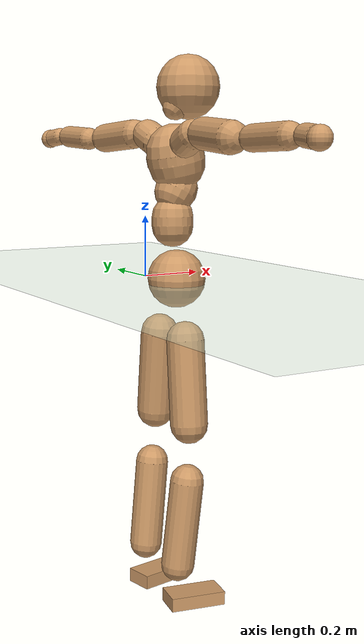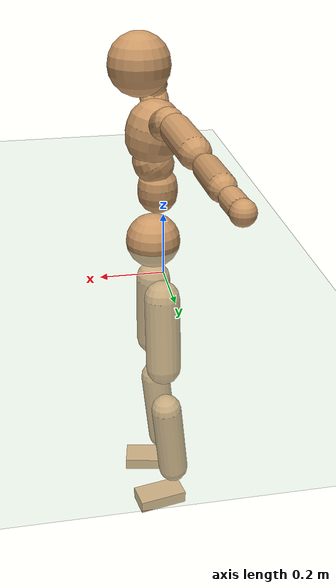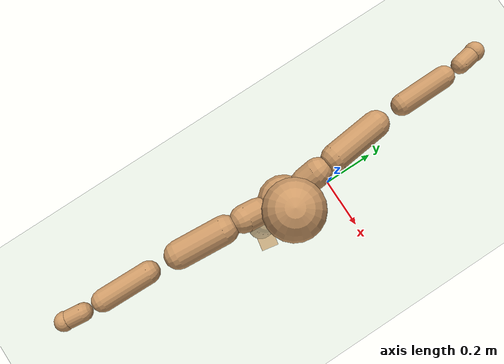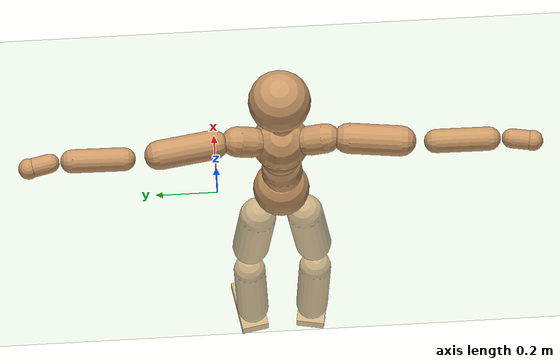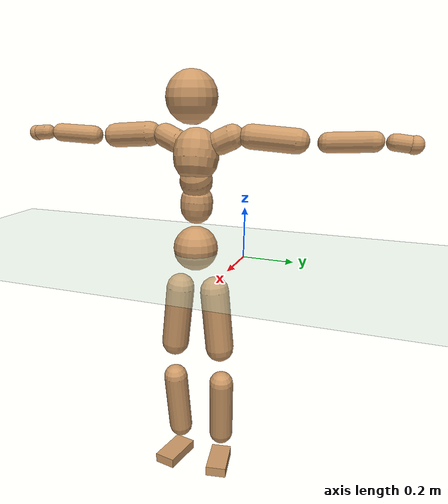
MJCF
<mujoco model="humanoid">
  <compiler coordinate="local" angle="radian"/>
  <default>
    <joint damping="0.0" armature="0.01" stiffness="0.0" limited="true"/>
    <geom conaffinity="1" condim="3" contype="7" margin="0.001" rgba="0.8 0.6 .4 1"/>
  </default>
  <asset>
    <texture type="skybox" builtin="gradient" rgb1=".4 .5 .6" rgb2="0 0 0" width="100" height="100"/>
    <texture builtin="flat" height="1278" mark="cross" markrgb="1 1 1" name="texgeom" random="0.01" rgb1="0.8 0.6 0.4" rgb2="0.8 0.6 0.4" type="cube" width="127"/>
    <texture builtin="checker" height="100" name="texplane" rgb1="0 0 0" rgb2="0.8 0.8 0.8" type="2d" width="100"/>
    <material name="MatPlane" reflectance="0.5" shininess="1" specular="1" texrepeat="60 60" texture="texplane"/>
    <material name="geom" texture="texgeom" texuniform="true"/>
  </asset>
  <worldbody>
    <light cutoff="100" diffuse="1 1 1" dir="-0 0 -1.3" directional="true" exponent="1" pos="0 0 1.3" specular=".1 .1 .1"/>
    <geom conaffinity="1" condim="3" name="floor" pos="0 0 0" rgba="0.8 0.9 0.8 1" size="100 100 .2" type="plane" material="MatPlane"/>
    <body name="Pelvis" pos="-0.0024 -0.2089 0.0153">
      <freejoint name="Pelvis"/>
      <geom type="sphere" contype="1" conaffinity="1" density="500" size="0.0921" pos="0.0000 0.0000 0.0000" name="Pelvis"/>
      <body name="L_Hip" pos="-0.0168 0.0695 -0.0967">
        <joint name="L_Hip_x" type="hinge" pos="0 0 0" axis="1 0 0" stiffness="800" damping="80" armature="0.02" range="-180.0000 180.0000"/>
        <joint name="L_Hip_y" type="hinge" pos="0 0 0" axis="0 1 0" stiffness="800" damping="80" armature="0.02" range="-180.0000 180.0000"/>
        <joint name="L_Hip_z" type="hinge" pos="0 0 0" axis="0 0 1" stiffness="800" damping="80" armature="0.02" range="-180.0000 180.0000"/>
        <geom type="capsule" contype="1" conaffinity="1" density="500" fromto="-0.0002 0.0086 -0.0879 -0.0009 0.0344 -0.3514" size="0.061" name="L_Hip"/>
        <body name="L_Knee" pos="-0.0011 0.0431 -0.4393">
          <joint name="L_Knee_x" type="hinge" pos="0 0 0" axis="1 0 0" stiffness="800" damping="80" armature="0.02" range="-180.0000 180.0000"/>
          <joint name="L_Knee_y" type="hinge" pos="0 0 0" axis="0 1 0" stiffness="800" damping="80" armature="0.02" range="-180.0000 180.0000"/>
          <joint name="L_Knee_z" type="hinge" pos="0 0 0" axis="0 0 1" stiffness="800" damping="80" armature="0.02" range="-180.0000 180.0000"/>
          <geom type="capsule" contype="1" conaffinity="1" density="500" fromto="-0.0096 -0.0027 -0.0933 -0.0385 -0.0109 -0.3734" size="0.0538" name="L_Knee"/>
          <body name="L_Ankle" pos="-0.0481 -0.0136 -0.4667">
            <joint name="L_Ankle_x" type="hinge" pos="0 0 0" axis="1 0 0" stiffness="800" damping="80" armature="0.02" range="-180.0000 180.0000"/>
            <joint name="L_Ankle_y" type="hinge" pos="0 0 0" axis="0 1 0" stiffness="800" damping="80" armature="0.02" range="-180.0000 180.0000"/>
            <joint name="L_Ankle_z" type="hinge" pos="0 0 0" axis="0 0 1" stiffness="800" damping="80" armature="0.02" range="-180.0000 180.0000"/>
            <geom type="box" contype="1" conaffinity="1" density="500" pos="0.0630 0.0114 -0.0319" size="0.088 0.0457 0.0229" quat="0.9960 0.0000 0.0000 0.0894" name="L_Ankle"/>
            <body name="L_Toe" pos="0.1261 0.0228 -0.0639">
              <joint name="L_Toe_x" type="hinge" pos="0 0 0" axis="1 0 0" stiffness="500" damping="50" armature="0.02" range="-180.0000 180.0000"/>
              <joint name="L_Toe_y" type="hinge" pos="0 0 0" axis="0 1 0" stiffness="500" damping="50" armature="0.02" range="-180.0000 180.0000"/>
              <joint name="L_Toe_z" type="hinge" pos="0 0 0" axis="0 0 1" stiffness="500" damping="50" armature="0.02" range="-180.0000 180.0000"/>
              <geom type="box" contype="1" conaffinity="1" density="500" pos="0.0000 0.0000 0.0311" size="0.0009 0.0023 0.0011" quat="0.9954 0.0000 0.0000 0.0956" name="L_Toe"/>
            </body>
          </body>
        </body>
      </body>
      <body name="R_Hip" pos="-0.0115 -0.0667 -0.0957">
        <joint name="R_Hip_x" type="hinge" pos="0 0 0" axis="1 0 0" stiffness="800" damping="80" armature="0.02" range="-180.0000 180.0000"/>
        <joint name="R_Hip_y" type="hinge" pos="0 0 0" axis="0 1 0" stiffness="800" damping="80" armature="0.02" range="-180.0000 180.0000"/>
        <joint name="R_Hip_z" type="hinge" pos="0 0 0" axis="0 0 1" stiffness="800" damping="80" armature="0.02" range="-180.0000 180.0000"/>
        <geom type="capsule" contype="1" conaffinity="1" density="500" fromto="-0.0010 -0.0101 -0.0893 -0.0040 -0.0403 -0.3570" size="0.0599" name="R_Hip"/>
        <body name="R_Knee" pos="-0.005 -0.0504 -0.4463">
          <joint name="R_Knee_x" type="hinge" pos="0 0 0" axis="1 0 0" stiffness="800" damping="80" armature="0.02" range="-180.0000 180.0000"/>
          <joint name="R_Knee_y" type="hinge" pos="0 0 0" axis="0 1 0" stiffness="800" damping="80" armature="0.02" range="-180.0000 180.0000"/>
          <joint name="R_Knee_z" type="hinge" pos="0 0 0" axis="0 0 1" stiffness="800" damping="80" armature="0.02" range="-180.0000 180.0000"/>
          <geom type="capsule" contype="1" conaffinity="1" density="500" fromto="-0.0089 0.0035 -0.0930 -0.0358 0.0139 -0.3720" size="0.054" name="R_Knee"/>
          <body name="R_Ankle" pos="-0.0447 0.0174 -0.465">
            <joint name="R_Ankle_x" type="hinge" pos="0 0 0" axis="1 0 0" stiffness="800" damping="80" armature="0.02" range="-180.0000 180.0000"/>
            <joint name="R_Ankle_y" type="hinge" pos="0 0 0" axis="0 1 0" stiffness="800" damping="80" armature="0.02" range="-180.0000 180.0000"/>
            <joint name="R_Ankle_z" type="hinge" pos="0 0 0" axis="0 0 1" stiffness="800" damping="80" armature="0.02" range="-180.0000 180.0000"/>
            <geom type="box" contype="1" conaffinity="1" density="500" pos="0.0648 -0.0119 -0.0273" size="0.0905 0.0478 0.0221" quat="0.9958 0.0000 0.0000 -0.0910" name="R_Ankle"/>
            <body name="R_Toe" pos="0.1296 -0.0239 -0.0546">
              <joint name="R_Toe_x" type="hinge" pos="0 0 0" axis="1 0 0" stiffness="500" damping="50" armature="0.02" range="-180.0000 180.0000"/>
              <joint name="R_Toe_y" type="hinge" pos="0 0 0" axis="0 1 0" stiffness="500" damping="50" armature="0.02" range="-180.0000 180.0000"/>
              <joint name="R_Toe_z" type="hinge" pos="0 0 0" axis="0 0 1" stiffness="500" damping="50" armature="0.02" range="-180.0000 180.0000"/>
              <geom type="box" contype="1" conaffinity="1" density="500" pos="0.0000 0.0000 0.0301" size="0.0008 0.0023 0.0012" quat="0.9966 0.0000 0.0000 -0.0823" name="R_Toe"/>
            </body>
          </body>
        </body>
      </body>
      <body name="Torso" pos="-0.0161 -0.0035 0.1109">
        <joint name="Torso_x" type="hinge" pos="0 0 0" axis="1 0 0" stiffness="1000" damping="100" armature="0.02" range="-180.0000 180.0000"/>
        <joint name="Torso_y" type="hinge" pos="0 0 0" axis="0 1 0" stiffness="1000" damping="100" armature="0.02" range="-180.0000 180.0000"/>
        <joint name="Torso_z" type="hinge" pos="0 0 0" axis="0 0 1" stiffness="1000" damping="100" armature="0.02" range="-180.0000 180.0000"/>
        <geom type="capsule" contype="1" conaffinity="1" density="500" fromto="0.0005 0.0030 0.0850 0.0003 0.0020 0.0567" size="0.0658" name="Torso"/>
        <body name="Spine" pos="0.0008 0.0051 0.1417">
          <joint name="Spine_x" type="hinge" pos="0 0 0" axis="1 0 0" stiffness="1000" damping="100" armature="0.02" range="-180.0000 180.0000"/>
          <joint name="Spine_y" type="hinge" pos="0 0 0" axis="0 1 0" stiffness="1000" damping="100" armature="0.02" range="-180.0000 180.0000"/>
          <joint name="Spine_z" type="hinge" pos="0 0 0" axis="0 0 1" stiffness="1000" damping="100" armature="0.02" range="-180.0000 180.0000"/>
          <geom type="capsule" contype="1" conaffinity="1" density="500" fromto="0.0171 0.0012 0.0311 0.0114 0.0008 0.0208" size="0.066" name="Spine"/>
          <body name="Chest" pos="0.0285 0.0019 0.0519">
            <joint name="Chest_x" type="hinge" pos="0 0 0" axis="1 0 0" stiffness="1000" damping="100" armature="0.02" range="-180.0000 180.0000"/>
            <joint name="Chest_y" type="hinge" pos="0 0 0" axis="0 1 0" stiffness="1000" damping="100" armature="0.02" range="-180.0000 180.0000"/>
            <joint name="Chest_z" type="hinge" pos="0 0 0" axis="0 0 1" stiffness="1000" damping="100" armature="0.02" range="-180.0000 180.0000"/>
            <geom type="capsule" contype="1" conaffinity="1" density="500" fromto="-0.0200 -0.0013 0.0883 -0.0133 -0.0009 0.0589" size="0.0906" name="Chest"/>
            <body name="Neck" pos="-0.0315 -0.005 0.2126">
              <joint name="Neck_x" type="hinge" pos="0 0 0" axis="1 0 0" stiffness="500" damping="50" armature="0.02" range="-180.0000 180.0000"/>
              <joint name="Neck_y" type="hinge" pos="0 0 0" axis="0 1 0" stiffness="500" damping="50" armature="0.02" range="-180.0000 180.0000"/>
              <joint name="Neck_z" type="hinge" pos="0 0 0" axis="0 0 1" stiffness="500" damping="50" armature="0.02" range="-180.0000 180.0000"/>
              <geom type="capsule" contype="1" conaffinity="1" density="500" fromto="0.0119 0.0010 0.0151 0.0475 0.0040 0.0605" size="0.0408" name="Neck"/>
              <body name="Head" pos="0.0594 0.0049 0.0756">
                <joint name="Head_x" type="hinge" pos="0 0 0" axis="1 0 0" stiffness="500" damping="50" armature="0.02" range="-180.0000 180.0000"/>
                <joint name="Head_y" type="hinge" pos="0 0 0" axis="0 1 0" stiffness="500" damping="50" armature="0.02" range="-180.0000 180.0000"/>
                <joint name="Head_z" type="hinge" pos="0 0 0" axis="0 0 1" stiffness="500" damping="50" armature="0.02" range="-180.0000 180.0000"/>
                <geom type="sphere" contype="1" conaffinity="1" density="500" size="0.0991" pos="0.0000 0.0000 0.0000" name="Head"/>
              </body>
            </body>
            <body name="L_Thorax" pos="-0.0323 0.0736 0.1152">
              <joint name="L_Thorax_x" type="hinge" pos="0 0 0" axis="1 0 0" stiffness="500" damping="50" armature="0.02" range="-180.0000 180.0000"/>
              <joint name="L_Thorax_y" type="hinge" pos="0 0 0" axis="0 1 0" stiffness="500" damping="50" armature="0.02" range="-180.0000 180.0000"/>
              <joint name="L_Thorax_z" type="hinge" pos="0 0 0" axis="0 0 1" stiffness="500" damping="50" armature="0.02" range="-180.0000 180.0000"/>
              <geom type="capsule" contype="1" conaffinity="1" density="500" fromto="-0.0014 0.0162 0.0071 -0.0054 0.0648 0.0284" size="0.0487" name="L_Thorax"/>
              <body name="L_Shoulder" pos="-0.0068 0.081 0.0355">
                <joint name="L_Shoulder_x" type="hinge" pos="0 0 0" axis="1 0 0" stiffness="500" damping="50" armature="0.02" range="-720.0000 720.0000"/>
                <joint name="L_Shoulder_y" type="hinge" pos="0 0 0" axis="0 1 0" stiffness="500" damping="50" armature="0.02" range="-720.0000 720.0000"/>
                <joint name="L_Shoulder_z" type="hinge" pos="0 0 0" axis="0 0 1" stiffness="500" damping="50" armature="0.02" range="-720.0000 720.0000"/>
                <geom type="capsule" contype="1" conaffinity="1" density="500" fromto="-0.0064 0.0575 -0.0044 -0.0256 0.2301 -0.0177" size="0.0471" name="L_Shoulder"/>
                <body name="L_Elbow" pos="-0.032 0.2876 -0.0221">
                  <joint name="L_Elbow_x" type="hinge" pos="0 0 0" axis="1 0 0" stiffness="500" damping="50" armature="0.02" range="-720.0000 720.0000"/>
                  <joint name="L_Elbow_y" type="hinge" pos="0 0 0" axis="0 1 0" stiffness="500" damping="50" armature="0.02" range="-720.0000 720.0000"/>
                  <joint name="L_Elbow_z" type="hinge" pos="0 0 0" axis="0 0 1" stiffness="500" damping="50" armature="0.02" range="-720.0000 720.0000"/>
                  <geom type="capsule" contype="1" conaffinity="1" density="500" fromto="-0.0003 0.0541 0.0026 -0.0014 0.2166 0.0102" size="0.0375" name="L_Elbow"/>
                  <body name="L_Wrist" pos="-0.0017 0.2707 0.0128">
                    <joint name="L_Wrist_x" type="hinge" pos="0 0 0" axis="1 0 0" stiffness="300" damping="30" armature="0.02" range="-180.0000 180.0000"/>
                    <joint name="L_Wrist_y" type="hinge" pos="0 0 0" axis="0 1 0" stiffness="300" damping="30" armature="0.02" range="-180.0000 180.0000"/>
                    <joint name="L_Wrist_z" type="hinge" pos="0 0 0" axis="0 0 1" stiffness="300" damping="30" armature="0.02" range="-180.0000 180.0000"/>
                    <geom type="capsule" contype="1" conaffinity="1" density="500" fromto="-0.0028 0.0166 -0.0021 -0.0114 0.0665 -0.0084" size="0.0307" name="L_Wrist"/>
                    <body name="L_Hand" pos="-0.0142 0.0831 -0.0105">
                      <joint name="L_Hand_x" type="hinge" pos="0 0 0" axis="1 0 0" stiffness="300" damping="30" armature="0.02" range="-180.0000 180.0000"/>
                      <joint name="L_Hand_y" type="hinge" pos="0 0 0" axis="0 1 0" stiffness="300" damping="30" armature="0.02" range="-180.0000 180.0000"/>
                      <joint name="L_Hand_z" type="hinge" pos="0 0 0" axis="0 0 1" stiffness="300" damping="30" armature="0.02" range="-180.0000 180.0000"/>
                      <geom type="sphere" contype="1" conaffinity="1" density="500" size="0.0333" pos="0.0000 0.0000 0.0000" name="L_Hand"/>
                    </body>
                  </body>
                </body>
              </body>
            </body>
            <body name="R_Thorax" pos="-0.0362 -0.0752 0.1137">
              <joint name="R_Thorax_x" type="hinge" pos="0 0 0" axis="1 0 0" stiffness="500" damping="50" armature="0.02" range="-180.0000 180.0000"/>
              <joint name="R_Thorax_y" type="hinge" pos="0 0 0" axis="0 1 0" stiffness="500" damping="50" armature="0.02" range="-180.0000 180.0000"/>
              <joint name="R_Thorax_z" type="hinge" pos="0 0 0" axis="0 0 1" stiffness="500" damping="50" armature="0.02" range="-180.0000 180.0000"/>
              <geom type="capsule" contype="1" conaffinity="1" density="500" fromto="-0.0013 -0.0167 0.0072 -0.0052 -0.0669 0.0288" size="0.0472" name="R_Thorax"/>
              <body name="R_Shoulder" pos="-0.0065 -0.0837 0.036">
                <joint name="R_Shoulder_x" type="hinge" pos="0 0 0" axis="1 0 0" stiffness="500" damping="50" armature="0.02" range="-720.0000 720.0000"/>
                <joint name="R_Shoulder_y" type="hinge" pos="0 0 0" axis="0 1 0" stiffness="500" damping="50" armature="0.02" range="-720.0000 720.0000"/>
                <joint name="R_Shoulder_z" type="hinge" pos="0 0 0" axis="0 0 1" stiffness="500" damping="50" armature="0.02" range="-720.0000 720.0000"/>
                <geom type="capsule" contype="1" conaffinity="1" density="500" fromto="-0.0046 -0.0549 -0.0038 -0.0186 -0.2196 -0.0152" size="0.0487" name="R_Shoulder"/>
                <body name="R_Elbow" pos="-0.0232 -0.2745 -0.019">
                  <joint name="R_Elbow_x" type="hinge" pos="0 0 0" axis="1 0 0" stiffness="500" damping="50" armature="0.02" range="-720.0000 720.0000"/>
                  <joint name="R_Elbow_y" type="hinge" pos="0 0 0" axis="0 1 0" stiffness="500" damping="50" armature="0.02" range="-720.0000 720.0000"/>
                  <joint name="R_Elbow_z" type="hinge" pos="0 0 0" axis="0 0 1" stiffness="500" damping="50" armature="0.02" range="-720.0000 720.0000"/>
                  <geom type="capsule" contype="1" conaffinity="1" density="500" fromto="-0.0013 -0.0555 0.0020 -0.0052 -0.2219 0.0078" size="0.0379" name="R_Elbow"/>
                  <body name="R_Wrist" pos="-0.0065 -0.2773 0.0098">
                    <joint name="R_Wrist_x" type="hinge" pos="0 0 0" axis="1 0 0" stiffness="300" damping="30" armature="0.02" range="-180.0000 180.0000"/>
                    <joint name="R_Wrist_y" type="hinge" pos="0 0 0" axis="0 1 0" stiffness="300" damping="30" armature="0.02" range="-180.0000 180.0000"/>
                    <joint name="R_Wrist_z" type="hinge" pos="0 0 0" axis="0 0 1" stiffness="300" damping="30" armature="0.02" range="-180.0000 180.0000"/>
                    <geom type="capsule" contype="1" conaffinity="1" density="500" fromto="-0.0021 -0.0165 -0.0015 -0.0085 -0.0661 -0.0060" size="0.0311" name="R_Wrist"/>
                    <body name="R_Hand" pos="-0.0107 -0.0826 -0.0075">
                      <joint name="R_Hand_x" type="hinge" pos="0 0 0" axis="1 0 0" stiffness="300" damping="30" armature="0.02" range="-180.0000 180.0000"/>
                      <joint name="R_Hand_y" type="hinge" pos="0 0 0" axis="0 1 0" stiffness="300" damping="30" armature="0.02" range="-180.0000 180.0000"/>
                      <joint name="R_Hand_z" type="hinge" pos="0 0 0" axis="0 0 1" stiffness="300" damping="30" armature="0.02" range="-180.0000 180.0000"/>
                      <geom type="sphere" contype="1" conaffinity="1" density="500" size="0.0330" pos="0.0000 0.0000 0.0000" name="R_Hand"/>
                    </body>
                  </body>
                </body>
              </body>
            </body>
          </body>
        </body>
      </body>
    </body>
  </worldbody>
  <actuator>
    <motor name="L_Hip_x" joint="L_Hip_x" gear="500"/>
    <motor name="L_Hip_y" joint="L_Hip_y" gear="500"/>
    <motor name="L_Hip_z" joint="L_Hip_z" gear="500"/>
    <motor name="L_Knee_x" joint="L_Knee_x" gear="500"/>
    <motor name="L_Knee_y" joint="L_Knee_y" gear="500"/>
    <motor name="L_Knee_z" joint="L_Knee_z" gear="500"/>
    <motor name="L_Ankle_x" joint="L_Ankle_x" gear="500"/>
    <motor name="L_Ankle_y" joint="L_Ankle_y" gear="500"/>
    <motor name="L_Ankle_z" joint="L_Ankle_z" gear="500"/>
    <motor name="L_Toe_x" joint="L_Toe_x" gear="500"/>
    <motor name="L_Toe_y" joint="L_Toe_y" gear="500"/>
    <motor name="L_Toe_z" joint="L_Toe_z" gear="500"/>
    <motor name="R_Hip_x" joint="R_Hip_x" gear="500"/>
    <motor name="R_Hip_y" joint="R_Hip_y" gear="500"/>
    <motor name="R_Hip_z" joint="R_Hip_z" gear="500"/>
    <motor name="R_Knee_x" joint="R_Knee_x" gear="500"/>
    <motor name="R_Knee_y" joint="R_Knee_y" gear="500"/>
    <motor name="R_Knee_z" joint="R_Knee_z" gear="500"/>
    <motor name="R_Ankle_x" joint="R_Ankle_x" gear="500"/>
    <motor name="R_Ankle_y" joint="R_Ankle_y" gear="500"/>
    <motor name="R_Ankle_z" joint="R_Ankle_z" gear="500"/>
    <motor name="R_Toe_x" joint="R_Toe_x" gear="500"/>
    <motor name="R_Toe_y" joint="R_Toe_y" gear="500"/>
    <motor name="R_Toe_z" joint="R_Toe_z" gear="500"/>
    <motor name="Torso_x" joint="Torso_x" gear="500"/>
    <motor name="Torso_y" joint="Torso_y" gear="500"/>
    <motor name="Torso_z" joint="Torso_z" gear="500"/>
    <motor name="Spine_x" joint="Spine_x" gear="500"/>
    <motor name="Spine_y" joint="Spine_y" gear="500"/>
    <motor name="Spine_z" joint="Spine_z" gear="500"/>
    <motor name="Chest_x" joint="Chest_x" gear="500"/>
    <motor name="Chest_y" joint="Chest_y" gear="500"/>
    <motor name="Chest_z" joint="Chest_z" gear="500"/>
    <motor name="Neck_x" joint="Neck_x" gear="500"/>
    <motor name="Neck_y" joint="Neck_y" gear="500"/>
    <motor name="Neck_z" joint="Neck_z" gear="500"/>
    <motor name="Head_x" joint="Head_x" gear="500"/>
    <motor name="Head_y" joint="Head_y" gear="500"/>
    <motor name="Head_z" joint="Head_z" gear="500"/>
    <motor name="L_Thorax_x" joint="L_Thorax_x" gear="500"/>
    <motor name="L_Thorax_y" joint="L_Thorax_y" gear="500"/>
    <motor name="L_Thorax_z" joint="L_Thorax_z" gear="500"/>
    <motor name="L_Shoulder_x" joint="L_Shoulder_x" gear="500"/>
    <motor name="L_Shoulder_y" joint="L_Shoulder_y" gear="500"/>
    <motor name="L_Shoulder_z" joint="L_Shoulder_z" gear="500"/>
    <motor name="L_Elbow_x" joint="L_Elbow_x" gear="500"/>
    <motor name="L_Elbow_y" joint="L_Elbow_y" gear="500"/>
    <motor name="L_Elbow_z" joint="L_Elbow_z" gear="500"/>
    <motor name="L_Wrist_x" joint="L_Wrist_x" gear="500"/>
    <motor name="L_Wrist_y" joint="L_Wrist_y" gear="500"/>
    <motor name="L_Wrist_z" joint="L_Wrist_z" gear="500"/>
    <motor name="L_Hand_x" joint="L_Hand_x" gear="500"/>
    <motor name="L_Hand_y" joint="L_Hand_y" gear="500"/>
    <motor name="L_Hand_z" joint="L_Hand_z" gear="500"/>
    <motor name="R_Thorax_x" joint="R_Thorax_x" gear="500"/>
    <motor name="R_Thorax_y" joint="R_Thorax_y" gear="500"/>
    <motor name="R_Thorax_z" joint="R_Thorax_z" gear="500"/>
    <motor name="R_Shoulder_x" joint="R_Shoulder_x" gear="500"/>
    <motor name="R_Shoulder_y" joint="R_Shoulder_y" gear="500"/>
    <motor name="R_Shoulder_z" joint="R_Shoulder_z" gear="500"/>
    <motor name="R_Elbow_x" joint="R_Elbow_x" gear="500"/>
    <motor name="R_Elbow_y" joint="R_Elbow_y" gear="500"/>
    <motor name="R_Elbow_z" joint="R_Elbow_z" gear="500"/>
    <motor name="R_Wrist_x" joint="R_Wrist_x" gear="500"/>
    <motor name="R_Wrist_y" joint="R_Wrist_y" gear="500"/>
    <motor name="R_Wrist_z" joint="R_Wrist_z" gear="500"/>
    <motor name="R_Hand_x" joint="R_Hand_x" gear="500"/>
    <motor name="R_Hand_y" joint="R_Hand_y" gear="500"/>
    <motor name="R_Hand_z" joint="R_Hand_z" gear="500"/>
  </actuator>
  <contact>
    <exclude body1="Torso" body2="Chest"/>
    <exclude body1="Head" body2="Chest"/>
    <exclude body1="R_Knee" body2="R_Toe"/>
    <exclude body1="R_Knee" body2="L_Ankle"/>
    <exclude body1="R_Knee" body2="L_Toe"/>
    <exclude body1="L_Knee" body2="L_Toe"/>
    <exclude body1="L_Knee" body2="R_Ankle"/>
    <exclude body1="L_Knee" body2="R_Toe"/>
    <exclude body1="L_Shoulder" body2="Chest"/>
    <exclude body1="R_Shoulder" body2="Chest"/>
  </contact>
  <sensor/>
  <size njmax="700" nconmax="700"/>
</mujoco>
